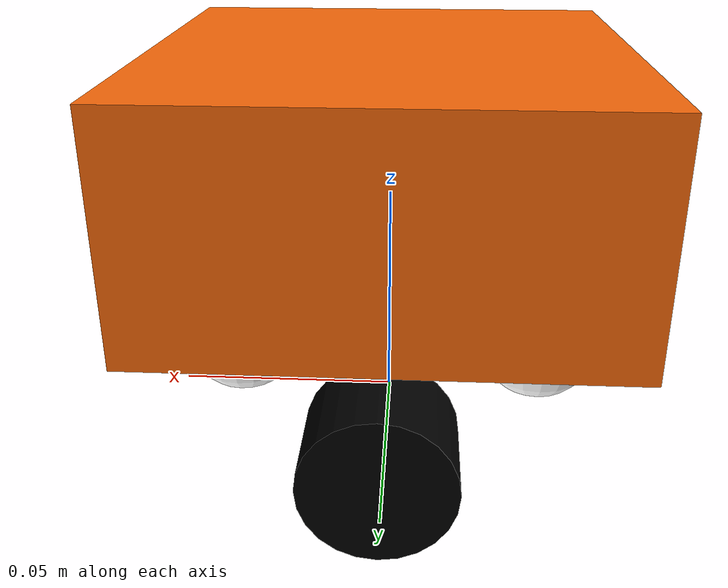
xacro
<?xml version="1.0"?>
<robot xmlns:xacro="http://www.ros.org/wiki/xacro">

  <!-- Constants for robot dimensions -->
  <xacro:property name="PI" value="3.1415926535897931"/>
  <xacro:property name="base_mass" value="0.3" /> <!-- arbitrary value for base mass -->
  <xacro:property name="base_width" value="0.1" />
  <xacro:property name="base_length" value="0.1" />
  <xacro:property name="base_height" value="0.05" />
  <xacro:property name="wheel_mass" value="0.3" /> <!-- arbitrary value for wheel mass -->
  <xacro:property name="wheel_len" value="0.020" />
  <xacro:property name="wheel_radius" value="0.015" />
  <xacro:property name="caster_wheel_mass" value="0.1" /> <!-- arbitrary value for caster wheel mass -->
  <xacro:property name="caster_wheel_radius" value="0.015" />
  <xacro:property name="z_offset" value="-${base_height/2}" /> <!-- Space btw top of beam and the each joint -->

  <material name="black">
    <color rgba="0.0 0.0 0.0 1.0"/>
  </material>

  <material name="blue">
    <color rgba="0.0 0.0 0.8 1.0"/>
  </material>

  <material name="green">
    <color rgba="0.0 0.8 0.0 1.0"/>
  </material>

  <material name="grey">
    <color rgba="0.2 0.2 0.2 1.0"/>
  </material>

  <material name="orange">
    <color rgba="${255/255} ${108/255} ${10/255} 1.0"/>
  </material>

  <material name="brown">
    <color rgba="${222/255} ${207/255} ${195/255} 1.0"/>
  </material>

  <material name="red">
    <color rgba="0.8 0.0 0.0 1.0"/>
  </material>

  <material name="white">
    <color rgba="1.0 1.0 1.0 1.0"/>
  </material>

   <!-- Base Link -->
   <link name="base_link">
    <collision>
      <origin xyz="0 0 0.0575" rpy="0 0 0"/>
      <geometry>
        <box size="${base_width} ${base_length} ${base_height}"/>
      </geometry>
    </collision>

    <visual>
      <origin xyz="0 0 0.0575" rpy="0 0 0"/>
      <geometry>
        <box size="${base_width} ${base_length} ${base_height}"/>
      </geometry>
      <material name="orange"/>
    </visual>

    <inertial>
      <origin xyz="0 0 0.0575" rpy="0 0 0"/>
      <mass value="${base_mass}"/>
      <inertia
        ixx="${base_mass / 12.0 * (base_length*base_length + base_height*base_height)}" ixy="0.0" ixz="0.0"
        iyy="${base_mass / 12.0 * (base_height*base_height + base_width*base_width)}" iyz="0.0"
        izz="${base_mass / 12.0 * (base_width*base_width + base_length*base_length)}"/>
      </inertial>
    </link>

    <gazebo reference="base_link">
        <material>Gazebo/Orange</material>
    </gazebo>

    <joint name="left_wheel_joint" type="continuous">
      <parent link="base_link"/>
      <child link="left_wheel"/>
      <origin xyz="0 -${base_width/2} 0.015" rpy="0 0 0"/>
      <axis xyz="0 1 0"/>
      <dynamics damping="0.2"/>
    </joint>

    <!-- left wheel Link -->
    <link name="left_wheel">
      <collision>
        <origin xyz="0 0 0" rpy="${PI/2} 0 0"/>
        <geometry>
          <cylinder length="${wheel_len}" radius="${wheel_radius}"/>
        </geometry>
      </collision>

      <visual>
        <origin xyz="0 0 0" rpy="${PI/2} 0 0"/>
        <geometry>
          <cylinder length="${wheel_len}" radius="${wheel_radius}"/>
        </geometry>
        <material name="black"/>
      </visual>

      <inertial>
        <origin xyz="0 0 0" rpy="${PI/2} 0 0"/>
        <mass value="${wheel_mass}"/>
        <inertia
          ixx="${wheel_mass / 12.0 * (3*wheel_radius + wheel_len*wheel_len)}" ixy="0.0" ixz="0.0"
          iyy="${wheel_mass / 12.0 * wheel_radius*wheel_radius}" iyz="0.0"
          izz="${wheel_mass / 12.0 * wheel_radius*wheel_radius}"/>
        </inertial>
      </link>

    <gazebo reference="left_wheel">
        <material>Gazebo/Black</material>
    </gazebo>

    <joint name="right_wheel_joint" type="continuous">
      <parent link="base_link"/>
      <child link="right_wheel"/>
      <origin xyz="0 ${base_width/2} 0.015" rpy="0 0 0"/>
      <axis xyz="0 1 0"/>
      <dynamics damping="0.2"/>
    </joint>

    <!-- right wheel Link -->
    <link name="right_wheel">
      <collision>
        <origin xyz="0 0 0" rpy="${PI/2} 0 0"/>
        <geometry>
          <cylinder length="${wheel_len}" radius="${wheel_radius}"/>
        </geometry>
      </collision>

      <visual>
        <origin xyz="0 0 0" rpy="${PI/2} 0 0"/>
        <geometry>
          <cylinder length="${wheel_len}" radius="${wheel_radius}"/>
        </geometry>
        <material name="black"/>
      </visual>

      <inertial>
        <origin xyz="0 0 0" rpy="${PI/2} 0 0"/>
        <mass value="${wheel_mass}"/>
        <inertia
          ixx="${wheel_mass / 12.0 * (3*wheel_radius + wheel_len*wheel_len)}" ixy="0.0" ixz="0.0"
          iyy="${wheel_mass / 12.0 * wheel_radius*wheel_radius}" iyz="0.0"
          izz="${wheel_mass / 12.0 * wheel_radius*wheel_radius}"/>
        </inertial>
     </link>

    <gazebo reference="right_wheel">
        <material>Gazebo/Black</material>
    </gazebo>

    <joint name="caster_frontal_wheel_joint" type="fixed">
      <parent link="base_link"/>
      <child link="caster_frontal_wheel"/>
      <origin xyz="${base_width/2 - caster_wheel_radius} 0 0" rpy="0 0 0"/>
    </joint>

    <!-- caster frontal wheel Link -->
    <link name="caster_frontal_wheel">
      <collision>
        <origin xyz="0 0 ${caster_wheel_radius}" rpy="0 0 0"/>
        <geometry>
          <sphere radius="${caster_wheel_radius}"/>
        </geometry>
      </collision>

      <visual>
        <origin xyz="0 0 ${caster_wheel_radius}" rpy="0 0 0"/>
        <geometry>
          <sphere radius="${caster_wheel_radius}"/>
        </geometry>
        <material name="white"/>
      </visual>

      <inertial>
        <origin xyz="0 0 ${caster_wheel_radius}" rpy="0 0 0"/>
        <mass value="${caster_wheel_mass}"/>
        <inertia
          ixx="${caster_wheel_mass * 0.4 * (caster_wheel_radius * caster_wheel_radius)}" ixy="0.0" ixz="0.0"
          iyy="${caster_wheel_mass * 0.4 * (caster_wheel_radius * caster_wheel_radius)}" iyz="0.0"
          izz="${caster_wheel_mass * 0.4 * (caster_wheel_radius * caster_wheel_radius)}"/>
        </inertial>
      </link>

    <gazebo reference="caster_frontal_wheel">
        <material>Gazebo/White</material>
    </gazebo>

    <joint name="caster_rear_wheel_joint" type="fixed">
      <parent link="base_link"/>
      <child link="caster_rear_wheel"/>
      <origin xyz="${-base_width/2 + caster_wheel_radius} 0 0" rpy="0 0 0"/>
    </joint>

    <!-- caster rear wheel Link -->
    <link name="caster_rear_wheel">
      <collision>
        <origin xyz="0 0 ${caster_wheel_radius}" rpy="0 0 0"/>
        <geometry>
          <sphere radius="${caster_wheel_radius}"/>
        </geometry>
      </collision>

      <visual>
        <origin xyz="0 0 ${caster_wheel_radius}" rpy="0 0 0"/>
        <geometry>
          <sphere radius="${caster_wheel_radius}"/>
        </geometry>
        <material name="white"/>
      </visual>

      <inertial>
        <origin xyz="0 0 ${caster_wheel_radius}" rpy="0 0 0"/>
        <mass value="${caster_wheel_mass}"/>
        <inertia
          ixx="${caster_wheel_mass * 0.4 * (caster_wheel_radius * caster_wheel_radius)}" ixy="0.0" ixz="0.0"
          iyy="${caster_wheel_mass * 0.4 * (caster_wheel_radius * caster_wheel_radius)}" iyz="0.0"
          izz="${caster_wheel_mass * 0.4 * (caster_wheel_radius * caster_wheel_radius)}"/>
        </inertial>
      </link>

    <gazebo reference="caster_rear_wheel">
        <material>Gazebo/White</material>
    </gazebo>

</robot>
